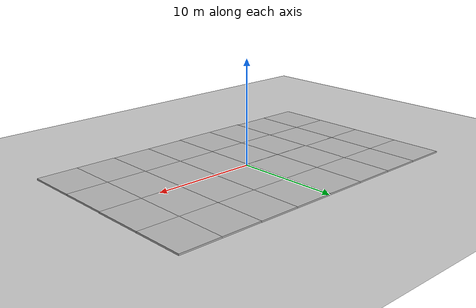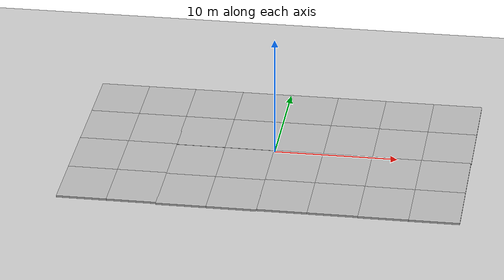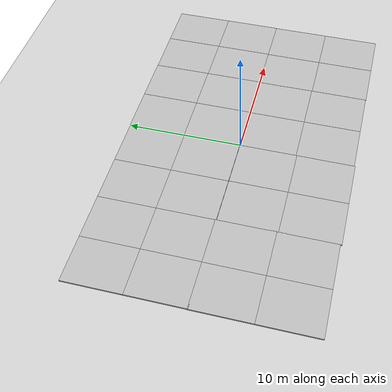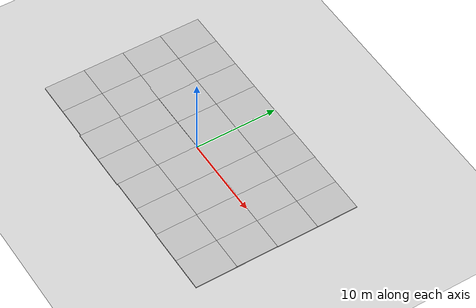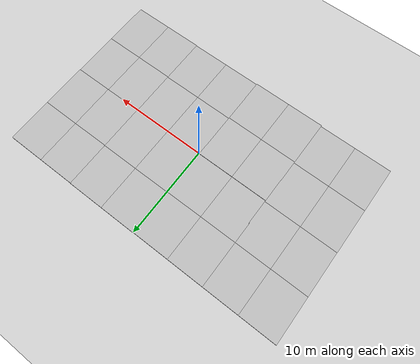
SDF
<sdf version="1.7">
 <world name="default">
  <light name="sun" type="directional">
   <pose>0 0 10 0 -0 0</pose>
   <diffuse>0.8 0.8 0.8 1</diffuse>
   <specular>0.2 0.2 0.2 1</specular>
   <attenuation>
    <range>1000</range>
    <constant>0.9</constant>
    <linear>0.01</linear>
    <quadratic>0.001</quadratic>
   </attenuation>
   <direction>-0.5 0.1 -0.9</direction>
   <spot><inner_angle>0</inner_angle><outer_angle>0</outer_angle><falloff>0</falloff></spot>
  </light>
  <model name="ground_plane">
   <static>1</static>
   <link name="link">
    <collision name="collision">
     <geometry><plane><normal>0 0 1</normal><size>100 100</size></plane></geometry>
     <surface>
      <contact><collide_bitmask>65535</collide_bitmask></contact>
      <friction><ode><mu>100</mu><mu2>50</mu2></ode></friction>
     </surface>
    </collision>
    <visual name="visual">
     <cast_shadows>0</cast_shadows>
     <geometry><plane><normal>0 0 1</normal><size>100 100</size></plane></geometry>
     <material>
      <script><uri>file://media/materials/scripts/gazebo.material</uri><name>Gazebo/Grey</name></script>
     </material>
    </visual>
   </link>
  </model>
  <gravity>0 0 -9.8</gravity>
  <magnetic_field>6e-06 2.3e-05 -4.2e-05</magnetic_field>
  <atmosphere type="adiabatic"/>
  <physics type="ode">
   <max_step_size>0.001</max_step_size>
   <real_time_factor>1</real_time_factor>
   <real_time_update_rate>1000</real_time_update_rate>
  </physics>
  <scene><ambient>0.4 0.4 0.4 1</ambient><background>0.7 0.7 0.7 1</background><shadows>1</shadows></scene>
  <audio><device>default</device></audio>
  <spherical_coordinates>
   <surface_model>EARTH_WGS84</surface_model>
   <latitude_deg>48.75880004498611</latitude_deg>
   <longitude_deg>3.995014473750001</longitude_deg>
   <elevation>254.99568</elevation>
   <heading_deg>180</heading_deg>
  </spherical_coordinates>
  <model name="mud_box">
   <static>1</static>
   <link name="link">
    <collision name="collision"><geometry><box><size>8 10 0.2</size></box></geometry></collision>
    <visual name="visual_1">
     <pose>-2 2.5 0 0 -0 0</pose>
     <cast_shadows>0</cast_shadows>
     <geometry><box><size>4 5 0.2</size></box></geometry>
     <material>
      <script>
       <uri>model://mud_box/materials/scripts</uri>
       <uri>model://mud_box/materials/textures</uri>
       <name>vrc/mud</name>
      </script>
     </material>
    </visual>
    <visual name="visual_2">
     <pose>2 2.5 0 0 -0 0</pose>
     <cast_shadows>0</cast_shadows>
     <geometry><box><size>4 5 0.2</size></box></geometry>
     <material>
      <script>
       <uri>model://mud_box/materials/scripts</uri>
       <uri>model://mud_box/materials/textures</uri>
       <name>vrc/mud</name>
      </script>
     </material>
    </visual>
    <visual name="visual_3">
     <pose>2 -2.5 0 0 -0 0</pose>
     <cast_shadows>0</cast_shadows>
     <geometry><box><size>4 5 0.2</size></box></geometry>
     <material>
      <script>
       <uri>model://mud_box/materials/scripts</uri>
       <uri>model://mud_box/materials/textures</uri>
       <name>vrc/mud</name>
      </script>
     </material>
    </visual>
    <visual name="visual_4">
     <pose>-2 -2.5 0 0 -0 0</pose>
     <cast_shadows>0</cast_shadows>
     <geometry><box><size>4 5 0.2</size></box></geometry>
     <material>
      <script>
       <uri>model://mud_box/materials/scripts</uri>
       <uri>model://mud_box/materials/textures</uri>
       <name>vrc/mud</name>
      </script>
     </material>
    </visual>
   </link>
   <pose>-4.06648 5.02504 0 0 -0 0</pose>
  </model>
  <model name="mud_box_0">
   <static>1</static>
   <link name="link">
    <collision name="collision"><geometry><box><size>8 10 0.2</size></box></geometry></collision>
    <visual name="visual_1">
     <pose>-2 2.5 0 0 -0 0</pose>
     <cast_shadows>0</cast_shadows>
     <geometry><box><size>4 5 0.2</size></box></geometry>
     <material>
      <script>
       <uri>model://mud_box/materials/scripts</uri>
       <uri>model://mud_box/materials/textures</uri>
       <name>vrc/mud</name>
      </script>
     </material>
    </visual>
    <visual name="visual_2">
     <pose>2 2.5 0 0 -0 0</pose>
     <cast_shadows>0</cast_shadows>
     <geometry><box><size>4 5 0.2</size></box></geometry>
     <material>
      <script>
       <uri>model://mud_box/materials/scripts</uri>
       <uri>model://mud_box/materials/textures</uri>
       <name>vrc/mud</name>
      </script>
     </material>
    </visual>
    <visual name="visual_3">
     <pose>2 -2.5 0 0 -0 0</pose>
     <cast_shadows>0</cast_shadows>
     <geometry><box><size>4 5 0.2</size></box></geometry>
     <material>
      <script>
       <uri>model://mud_box/materials/scripts</uri>
       <uri>model://mud_box/materials/textures</uri>
       <name>vrc/mud</name>
      </script>
     </material>
    </visual>
    <visual name="visual_4">
     <pose>-2 -2.5 0 0 -0 0</pose>
     <cast_shadows>0</cast_shadows>
     <geometry><box><size>4 5 0.2</size></box></geometry>
     <material>
      <script>
       <uri>model://mud_box/materials/scripts</uri>
       <uri>model://mud_box/materials/textures</uri>
       <name>vrc/mud</name>
      </script>
     </material>
    </visual>
   </link>
   <pose>-4.05173 -4.99512 0 0 -0 0</pose>
  </model>
  <model name="mud_box_1">
   <static>1</static>
   <link name="link">
    <collision name="collision"><geometry><box><size>8 10 0.2</size></box></geometry></collision>
    <visual name="visual_1">
     <pose>-2 2.5 0 0 -0 0</pose>
     <cast_shadows>0</cast_shadows>
     <geometry><box><size>4 5 0.2</size></box></geometry>
     <material>
      <script>
       <uri>model://mud_box/materials/scripts</uri>
       <uri>model://mud_box/materials/textures</uri>
       <name>vrc/mud</name>
      </script>
     </material>
    </visual>
    <visual name="visual_2">
     <pose>2 2.5 0 0 -0 0</pose>
     <cast_shadows>0</cast_shadows>
     <geometry><box><size>4 5 0.2</size></box></geometry>
     <material>
      <script>
       <uri>model://mud_box/materials/scripts</uri>
       <uri>model://mud_box/materials/textures</uri>
       <name>vrc/mud</name>
      </script>
     </material>
    </visual>
    <visual name="visual_3">
     <pose>2 -2.5 0 0 -0 0</pose>
     <cast_shadows>0</cast_shadows>
     <geometry><box><size>4 5 0.2</size></box></geometry>
     <material>
      <script>
       <uri>model://mud_box/materials/scripts</uri>
       <uri>model://mud_box/materials/textures</uri>
       <name>vrc/mud</name>
      </script>
     </material>
    </visual>
    <visual name="visual_4">
     <pose>-2 -2.5 0 0 -0 0</pose>
     <cast_shadows>0</cast_shadows>
     <geometry><box><size>4 5 0.2</size></box></geometry>
     <material>
      <script>
       <uri>model://mud_box/materials/scripts</uri>
       <uri>model://mud_box/materials/textures</uri>
       <name>vrc/mud</name>
      </script>
     </material>
    </visual>
   </link>
   <pose>3.9603 5.05586 0 0 -0 0</pose>
  </model>
  <model name="mud_box_2">
   <static>1</static>
   <link name="link">
    <collision name="collision"><geometry><box><size>8 10 0.2</size></box></geometry></collision>
    <visual name="visual_1">
     <pose>-2 2.5 0 0 -0 0</pose>
     <cast_shadows>0</cast_shadows>
     <geometry><box><size>4 5 0.2</size></box></geometry>
     <material>
      <script>
       <uri>model://mud_box/materials/scripts</uri>
       <uri>model://mud_box/materials/textures</uri>
       <name>vrc/mud</name>
      </script>
     </material>
    </visual>
    <visual name="visual_2">
     <pose>2 2.5 0 0 -0 0</pose>
     <cast_shadows>0</cast_shadows>
     <geometry><box><size>4 5 0.2</size></box></geometry>
     <material>
      <script>
       <uri>model://mud_box/materials/scripts</uri>
       <uri>model://mud_box/materials/textures</uri>
       <name>vrc/mud</name>
      </script>
     </material>
    </visual>
    <visual name="visual_3">
     <pose>2 -2.5 0 0 -0 0</pose>
     <cast_shadows>0</cast_shadows>
     <geometry><box><size>4 5 0.2</size></box></geometry>
     <material>
      <script>
       <uri>model://mud_box/materials/scripts</uri>
       <uri>model://mud_box/materials/textures</uri>
       <name>vrc/mud</name>
      </script>
     </material>
    </visual>
    <visual name="visual_4">
     <pose>-2 -2.5 0 0 -0 0</pose>
     <cast_shadows>0</cast_shadows>
     <geometry><box><size>4 5 0.2</size></box></geometry>
     <material>
      <script>
       <uri>model://mud_box/materials/scripts</uri>
       <uri>model://mud_box/materials/textures</uri>
       <name>vrc/mud</name>
      </script>
     </material>
    </visual>
   </link>
   <pose>3.92808 -4.92071 0 0 -0 0</pose>
  </model>
  <model name="mud_box_3">
   <static>1</static>
   <link name="link">
    <collision name="collision"><geometry><box><size>8 10 0.2</size></box></geometry></collision>
    <visual name="visual_1">
     <pose>-2 2.5 0 0 -0 0</pose>
     <cast_shadows>0</cast_shadows>
     <geometry><box><size>4 5 0.2</size></box></geometry>
     <material>
      <script>
       <uri>model://mud_box/materials/scripts</uri>
       <uri>model://mud_box/materials/textures</uri>
       <name>vrc/mud</name>
      </script>
     </material>
    </visual>
    <visual name="visual_2">
     <pose>2 2.5 0 0 -0 0</pose>
     <cast_shadows>0</cast_shadows>
     <geometry><box><size>4 5 0.2</size></box></geometry>
     <material>
      <script>
       <uri>model://mud_box/materials/scripts</uri>
       <uri>model://mud_box/materials/textures</uri>
       <name>vrc/mud</name>
      </script>
     </material>
    </visual>
    <visual name="visual_3">
     <pose>2 -2.5 0 0 -0 0</pose>
     <cast_shadows>0</cast_shadows>
     <geometry><box><size>4 5 0.2</size></box></geometry>
     <material>
      <script>
       <uri>model://mud_box/materials/scripts</uri>
       <uri>model://mud_box/materials/textures</uri>
       <name>vrc/mud</name>
      </script>
     </material>
    </visual>
    <visual name="visual_4">
     <pose>-2 -2.5 0 0 -0 0</pose>
     <cast_shadows>0</cast_shadows>
     <geometry><box><size>4 5 0.2</size></box></geometry>
     <material>
      <script>
       <uri>model://mud_box/materials/scripts</uri>
       <uri>model://mud_box/materials/textures</uri>
       <name>vrc/mud</name>
      </script>
     </material>
    </visual>
   </link>
   <pose>11.9178 -4.96326 0 0 -0 0</pose>
  </model>
  <model name="mud_box_4">
   <static>1</static>
   <link name="link">
    <collision name="collision"><geometry><box><size>8 10 0.2</size></box></geometry></collision>
    <visual name="visual_1">
     <pose>-2 2.5 0 0 -0 0</pose>
     <cast_shadows>0</cast_shadows>
     <geometry><box><size>4 5 0.2</size></box></geometry>
     <material>
      <script>
       <uri>model://mud_box/materials/scripts</uri>
       <uri>model://mud_box/materials/textures</uri>
       <name>vrc/mud</name>
      </script>
     </material>
    </visual>
    <visual name="visual_2">
     <pose>2 2.5 0 0 -0 0</pose>
     <cast_shadows>0</cast_shadows>
     <geometry><box><size>4 5 0.2</size></box></geometry>
     <material>
      <script>
       <uri>model://mud_box/materials/scripts</uri>
       <uri>model://mud_box/materials/textures</uri>
       <name>vrc/mud</name>
      </script>
     </material>
    </visual>
    <visual name="visual_3">
     <pose>2 -2.5 0 0 -0 0</pose>
     <cast_shadows>0</cast_shadows>
     <geometry><box><size>4 5 0.2</size></box></geometry>
     <material>
      <script>
       <uri>model://mud_box/materials/scripts</uri>
       <uri>model://mud_box/materials/textures</uri>
       <name>vrc/mud</name>
      </script>
     </material>
    </visual>
    <visual name="visual_4">
     <pose>-2 -2.5 0 0 -0 0</pose>
     <cast_shadows>0</cast_shadows>
     <geometry><box><size>4 5 0.2</size></box></geometry>
     <material>
      <script>
       <uri>model://mud_box/materials/scripts</uri>
       <uri>model://mud_box/materials/textures</uri>
       <name>vrc/mud</name>
      </script>
     </material>
    </visual>
   </link>
   <pose>11.9496 5.03299 0 0 -0 0</pose>
  </model>
  <model name="mud_box_5">
   <static>1</static>
   <link name="link">
    <collision name="collision"><geometry><box><size>8 10 0.2</size></box></geometry></collision>
    <visual name="visual_1">
     <pose>-2 2.5 0 0 -0 0</pose>
     <cast_shadows>0</cast_shadows>
     <geometry><box><size>4 5 0.2</size></box></geometry>
     <material>
      <script>
       <uri>model://mud_box/materials/scripts</uri>
       <uri>model://mud_box/materials/textures</uri>
       <name>vrc/mud</name>
      </script>
     </material>
    </visual>
    <visual name="visual_2">
     <pose>2 2.5 0 0 -0 0</pose>
     <cast_shadows>0</cast_shadows>
     <geometry><box><size>4 5 0.2</size></box></geometry>
     <material>
      <script>
       <uri>model://mud_box/materials/scripts</uri>
       <uri>model://mud_box/materials/textures</uri>
       <name>vrc/mud</name>
      </script>
     </material>
    </visual>
    <visual name="visual_3">
     <pose>2 -2.5 0 0 -0 0</pose>
     <cast_shadows>0</cast_shadows>
     <geometry><box><size>4 5 0.2</size></box></geometry>
     <material>
      <script>
       <uri>model://mud_box/materials/scripts</uri>
       <uri>model://mud_box/materials/textures</uri>
       <name>vrc/mud</name>
      </script>
     </material>
    </visual>
    <visual name="visual_4">
     <pose>-2 -2.5 0 0 -0 0</pose>
     <cast_shadows>0</cast_shadows>
     <geometry><box><size>4 5 0.2</size></box></geometry>
     <material>
      <script>
       <uri>model://mud_box/materials/scripts</uri>
       <uri>model://mud_box/materials/textures</uri>
       <name>vrc/mud</name>
      </script>
     </material>
    </visual>
   </link>
   <pose>-12.003 5.02373 0 0 -0 0</pose>
  </model>
  <model name="mud_box_6">
   <static>1</static>
   <link name="link">
    <collision name="collision"><geometry><box><size>8 10 0.2</size></box></geometry></collision>
    <visual name="visual_1">
     <pose>-2 2.5 0 0 -0 0</pose>
     <cast_shadows>0</cast_shadows>
     <geometry><box><size>4 5 0.2</size></box></geometry>
     <material>
      <script>
       <uri>model://mud_box/materials/scripts</uri>
       <uri>model://mud_box/materials/textures</uri>
       <name>vrc/mud</name>
      </script>
     </material>
    </visual>
    <visual name="visual_2">
     <pose>2 2.5 0 0 -0 0</pose>
     <cast_shadows>0</cast_shadows>
     <geometry><box><size>4 5 0.2</size></box></geometry>
     <material>
      <script>
       <uri>model://mud_box/materials/scripts</uri>
       <uri>model://mud_box/materials/textures</uri>
       <name>vrc/mud</name>
      </script>
     </material>
    </visual>
    <visual name="visual_3">
     <pose>2 -2.5 0 0 -0 0</pose>
     <cast_shadows>0</cast_shadows>
     <geometry><box><size>4 5 0.2</size></box></geometry>
     <material>
      <script>
       <uri>model://mud_box/materials/scripts</uri>
       <uri>model://mud_box/materials/textures</uri>
       <name>vrc/mud</name>
      </script>
     </material>
    </visual>
    <visual name="visual_4">
     <pose>-2 -2.5 0 0 -0 0</pose>
     <cast_shadows>0</cast_shadows>
     <geometry><box><size>4 5 0.2</size></box></geometry>
     <material>
      <script>
       <uri>model://mud_box/materials/scripts</uri>
       <uri>model://mud_box/materials/textures</uri>
       <name>vrc/mud</name>
      </script>
     </material>
    </visual>
   </link>
   <pose>-12.0196 -4.87944 0 0 -0 0</pose>
  </model>
 </world>
</sdf>
